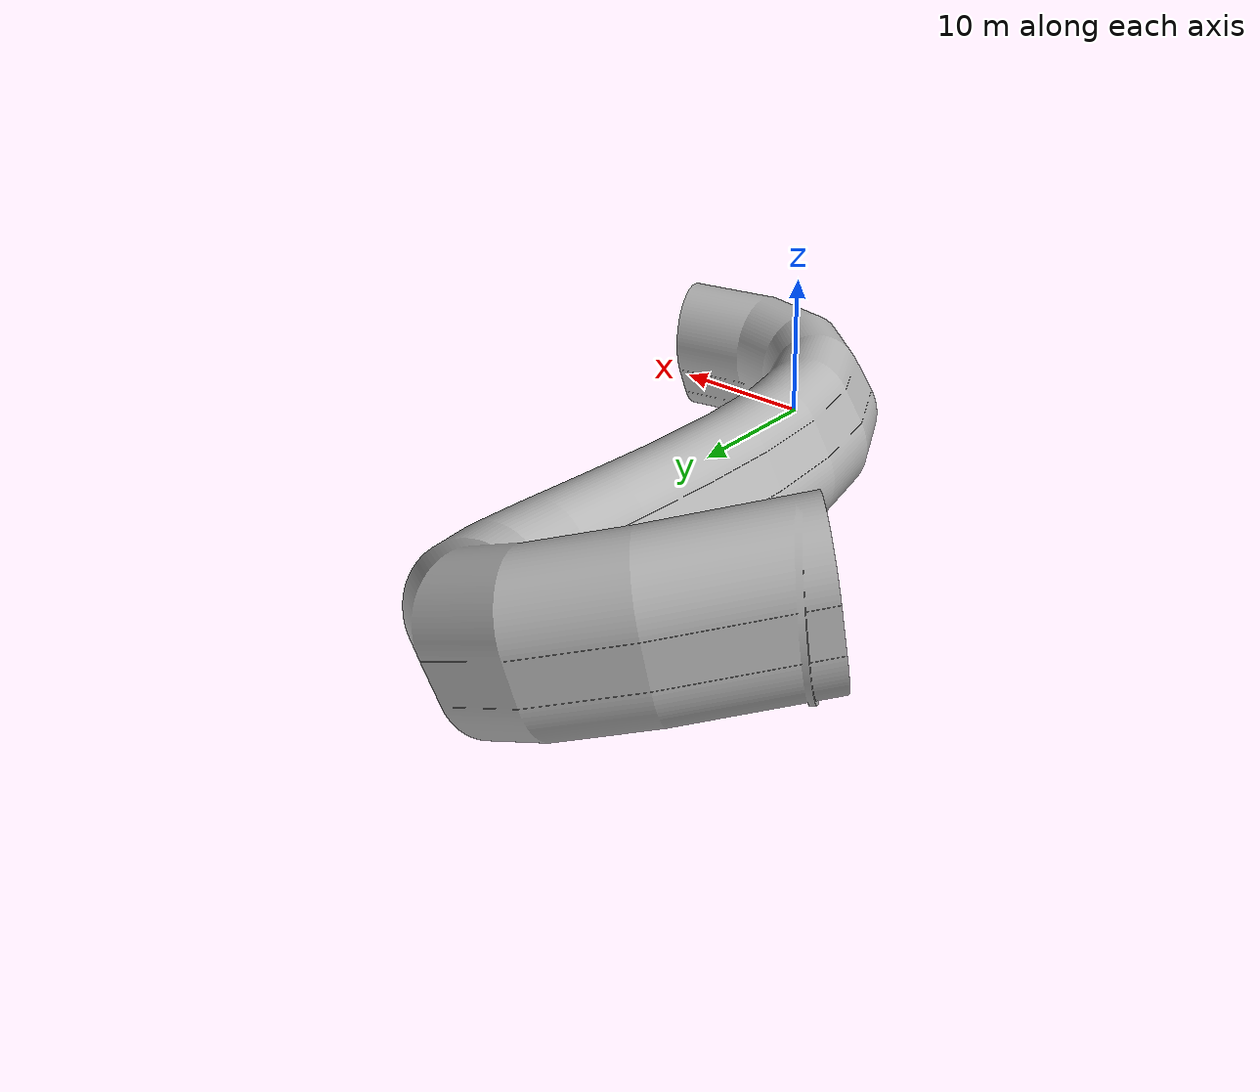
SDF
<?xml version="1.0"?>
<sdf version="1.4">

    <model name="tunnel6">
      <pose>0 0 0  0 0 0</pose>
      <static>true</static>
      <link name="body">

        <inertial>
             <mass>500</mass>
             <inertia>
               <ixx>0.001087473</ixx>
               <iyy>0.001087473</iyy>
               <izz>0.001092437</izz>
               <ixy>0</ixy>
               <ixz>0</ixz>
               <iyz>0</iyz>
             </inertia>
           </inertial>

        <visual name="visual">
          <geometry>
            <mesh><uri>model://tunnel6/meshes/tunnel_brick6.dae</uri></mesh>
          </geometry>
        </visual>

        <collision name="collision">
          <geometry>
            <mesh><uri>model://tunnel6/meshes/tunnel_brick6.dae</uri></mesh>
          </geometry>
        </collision>

    </link>
  </model>

</sdf>
